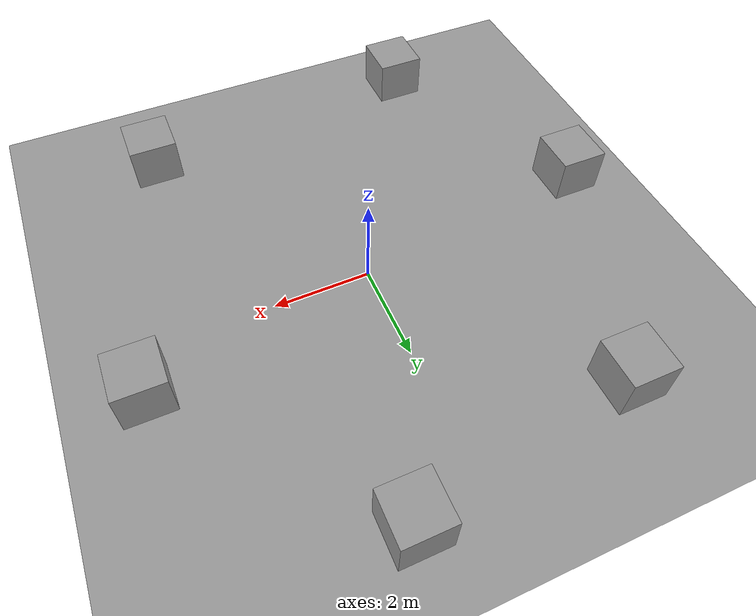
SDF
<sdf version="1.6">
 <world name="default">
  <light name="sun" type="directional">
   <pose>0 0 10 0 -0 0</pose>
   <diffuse>0.8 0.8 0.8 1</diffuse>
   <specular>0.2 0.2 0.2 1</specular>
   <attenuation>
    <range>1000</range>
    <constant>0.9</constant>
    <linear>0.01</linear>
    <quadratic>0.001</quadratic>
   </attenuation>
   <direction>0.5 0.1 -0.9</direction>
  </light>
  <scene><ambient>0.4 0.4 0.4 1</ambient><background>0.7 0.7 0.7 1</background><shadows>1</shadows></scene>
  <physics name="default_physics" default="0" type="ode">
   <max_step_size>0.01</max_step_size>
   <real_time_factor>1</real_time_factor>
   <real_time_update_rate>100</real_time_update_rate>
  </physics>
  <model name="ground_plane_0">
   <static>1</static>
   <link name="link">
    <collision name="collision">
     <geometry><plane><normal>0 0 1</normal><size>100 100</size></plane></geometry>
     <surface><friction><ode><mu>100</mu><mu2>50</mu2></ode></friction></surface>
    </collision>
    <visual name="visual">
     <cast_shadows>0</cast_shadows>
     <geometry><plane><normal>0 0 1</normal><size>100 100</size></plane></geometry>
     <material>
      <script><uri>file://media/materials/scripts/gazebo.material</uri><name>Gazebo/Grey</name></script>
     </material>
    </visual>
    <velocity_decay><linear>0</linear><angular>0</angular></velocity_decay>
   </link>
   <pose>0.497681 0 0 0 -0 0</pose>
  </model>
  <gravity>0 0 -9.8</gravity>
  <magnetic_field>6e-06 2.3e-05 -4.2e-05</magnetic_field>
  <atmosphere type="adiabatic"/>
  <spherical_coordinates>
   <surface_model>EARTH_WGS84</surface_model>
   <latitude_deg>0</latitude_deg>
   <longitude_deg>0</longitude_deg>
   <elevation>0</elevation>
   <heading_deg>0</heading_deg>
  </spherical_coordinates>
  <model name="unit_box_0">
   <pose>-2.96845 -5.32644 0.49907 -0.0001 0 0</pose>
   <link name="link">
    <inertial>
     <mass>1</mass>
     <inertia>
      <ixx>0.166667</ixx>
      <ixy>0</ixy>
      <ixz>0</ixz>
      <iyy>0.166667</iyy>
      <iyz>0</iyz>
      <izz>0.166667</izz>
     </inertia>
    </inertial>
    <collision name="collision"><geometry><box><size>1 1 1</size></box></geometry></collision>
    <visual name="visual">
     <geometry><box><size>1 1 1</size></box></geometry>
     <material>
      <script><name>Gazebo/Grey</name><uri>file://media/materials/scripts/gazebo.material</uri></script>
     </material>
    </visual>
   </link>
  </model>
  <model name="unit_box_1">
   <pose>-5.17077 -0.768091 0.49967 0.00066 -0 0</pose>
   <link name="link">
    <inertial>
     <mass>1</mass>
     <inertia>
      <ixx>0.166667</ixx>
      <ixy>0</ixy>
      <ixz>0</ixz>
      <iyy>0.166667</iyy>
      <iyz>0</iyz>
      <izz>0.166667</izz>
     </inertia>
    </inertial>
    <collision name="collision"><geometry><box><size>1 1 1</size></box></geometry></collision>
    <visual name="visual">
     <geometry><box><size>1 1 1</size></box></geometry>
     <material>
      <script><name>Gazebo/Grey</name><uri>file://media/materials/scripts/gazebo.material</uri></script>
     </material>
    </visual>
   </link>
  </model>
  <model name="unit_box_2">
   <pose>3.23693 -4.73622 0.49907 -0.0001 0 0</pose>
   <link name="link">
    <inertial>
     <mass>1</mass>
     <inertia>
      <ixx>0.166667</ixx>
      <ixy>0</ixy>
      <ixz>0</ixz>
      <iyy>0.166667</iyy>
      <iyz>0</iyz>
      <izz>0.166667</izz>
     </inertia>
    </inertial>
    <collision name="collision"><geometry><box><size>1 1 1</size></box></geometry></collision>
    <visual name="visual">
     <geometry><box><size>1 1 1</size></box></geometry>
     <material>
      <script><name>Gazebo/Grey</name><uri>file://media/materials/scripts/gazebo.material</uri></script>
     </material>
    </visual>
   </link>
  </model>
  <model name="unit_box_3">
   <pose>4.76939 0.926202 0.49967 0.00066 -0 0</pose>
   <link name="link">
    <inertial>
     <mass>1</mass>
     <inertia>
      <ixx>0.166667</ixx>
      <ixy>0</ixy>
      <ixz>0</ixz>
      <iyy>0.166667</iyy>
      <iyz>0</iyz>
      <izz>0.166667</izz>
     </inertia>
    </inertial>
    <collision name="collision"><geometry><box><size>1 1 1</size></box></geometry></collision>
    <visual name="visual">
     <geometry><box><size>1 1 1</size></box></geometry>
     <material>
      <script><name>Gazebo/Grey</name><uri>file://media/materials/scripts/gazebo.material</uri></script>
     </material>
    </visual>
   </link>
  </model>
  <model name="unit_box_4">
   <pose>-3.35063 4.11437 0.49907 -0.0001 0 0</pose>
   <link name="link">
    <inertial>
     <mass>1</mass>
     <inertia>
      <ixx>0.166667</ixx>
      <ixy>0</ixy>
      <ixz>0</ixz>
      <iyy>0.166667</iyy>
      <iyz>0</iyz>
      <izz>0.166667</izz>
     </inertia>
    </inertial>
    <collision name="collision"><geometry><box><size>1 1 1</size></box></geometry></collision>
    <visual name="visual">
     <geometry><box><size>1 1 1</size></box></geometry>
     <material>
      <script><name>Gazebo/Grey</name><uri>file://media/materials/scripts/gazebo.material</uri></script>
     </material>
    </visual>
   </link>
  </model>
  <model name="unit_box_5">
   <pose>1.35281 4.93704 0.499798 0.000404 1e-06 0</pose>
   <link name="link">
    <inertial>
     <mass>1</mass>
     <inertia>
      <ixx>0.166667</ixx>
      <ixy>0</ixy>
      <ixz>0</ixz>
      <iyy>0.166667</iyy>
      <iyz>0</iyz>
      <izz>0.166667</izz>
     </inertia>
    </inertial>
    <collision name="collision"><geometry><box><size>1 1 1</size></box></geometry></collision>
    <visual name="visual">
     <geometry><box><size>1 1 1</size></box></geometry>
     <material>
      <script><name>Gazebo/Grey</name><uri>file://media/materials/scripts/gazebo.material</uri></script>
     </material>
    </visual>
   </link>
  </model>
 </world>
</sdf>
